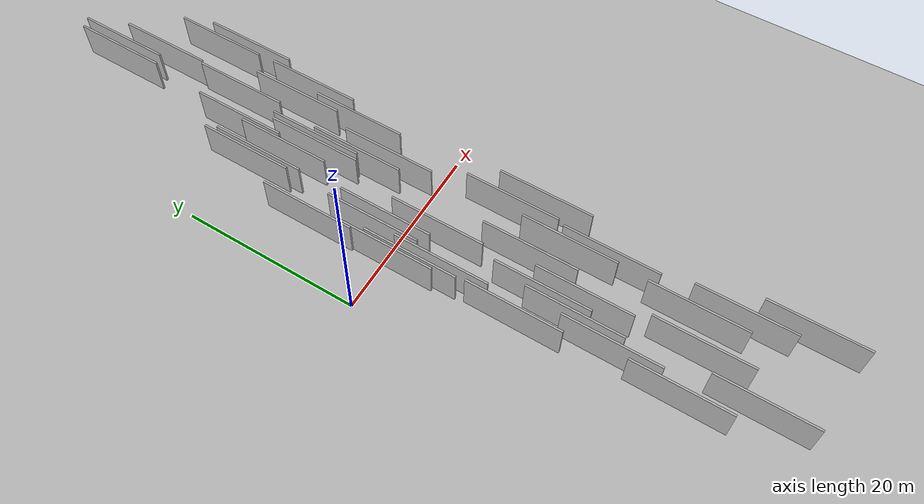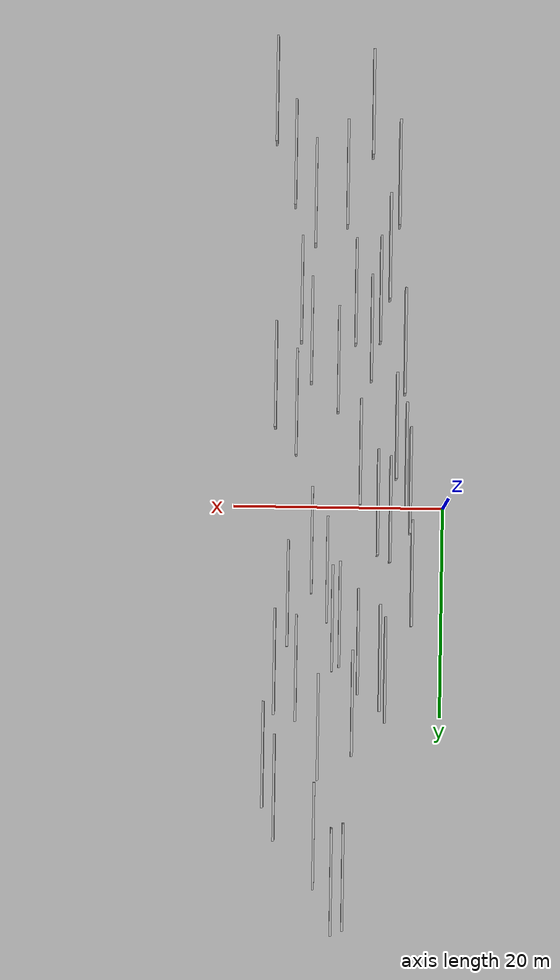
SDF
<?xml version="1.0" encoding="utf-8"?>

<sdf version="1.6">

   <world name="default">

      <gui fullscreen="0">

         <camera name="user_camera">

            <pose>-15 0 4.57585 0 0 0</pose>

            <view_controller>orbit</view_controller>

         </camera>

      </gui>

      <scene>

         <sky>

           <clouds>

             <speed>12</speed>

           </clouds>

         </sky>

         <ambient>0.4 0.4 0.4 1</ambient>

         <background>0.7 0.7 0.7 1</background>

         <shadows>1</shadows>

      </scene>

      <gravity>0 0 -9.8066</gravity>

      <magnetic_field>6e-06 2.3e-05 -4.2e-05</magnetic_field>

      <physics default="0" name="default_physics" type="ode">

         <ode>

            <solver>

               <type>quick</type>

               <iters>10</iters>

               <sor>1.0</sor>

               <use_dynamic_moi_rescaling>0</use_dynamic_moi_rescaling>

            </solver>

            <constraints>

               <cfm>0</cfm>

               <erp>0.2</erp>

               <contact_max_correcting_vel>100</contact_max_correcting_vel>

               <contact_surface_layer>0.001</contact_surface_layer>

            </constraints>

         </ode>

         <max_step_size>0.004</max_step_size>

         <real_time_factor>1</real_time_factor>

         <real_time_update_rate>250</real_time_update_rate>

      </physics>

      <light name="sun" type="directional">

         <cast_shadows>1</cast_shadows>

         <pose>0 0 10 0 0 0</pose>

         <diffuse>0.8 0.8 0.8 1</diffuse>

         <specular>0.2 0.2 0.2 1</specular>

         <attenuation>

            <range>1000</range>

            <constant>0.9</constant>

            <linear>0.01</linear>

            <quadratic>0.001</quadratic>

         </attenuation>

         <direction>-0.5 0.1 -0.9</direction>

      </light>

      <include>

         <name>ground_plane_1</name>

         <uri>model://HANNAS_ground_plane</uri>

         <pose>0 0 0  0 0 0</pose>

      </include>

      <include>

         <name>ground_plane_2</name>

         <uri>model://HANNAS_ground_plane</uri>

         <pose>100 0 0  0 0 0</pose>

      </include>

      <model name="HANNAS_wall_1">

         <static>1</static>

         <pose frame="">16.8194 23.5999 5.0 0.000000 0.000000 1.570796</pose>

         <link name="link">

            <pose frame="">0 0 2.00 0 0 0</pose>

            <collision name="collision">

               <geometry>

                  <box>

                     <size>10.00 0.2 4.00</size>

                  </box>

               </geometry>

               <max_contacts>10</max_contacts>

               <surface>

                  <contact>

                     <ode/>

                  </contact>

                  <bounce/>

                  <friction>

                     <torsional>

                        <ode/>

                     </torsional>

                     <ode/>

                  </friction>

               </surface>

            </collision>

            <visual name="visual">

               <cast_shadows>0</cast_shadows>

               <geometry>

                  <box>

                     <size>10.00 0.2 4.00</size>

                  </box>

               </geometry>

               <material>

                  <script>

                     <uri>model://HANNAS_wall/materials/scripts</uri>

                     <uri>model://HANNAS_wall/materials/textures</uri>

                     <name>vrc/HANNAS_wall</name>

                  </script>

               </material>

            </visual>

            <self_collide>0</self_collide>

            <enable_wind>0</enable_wind>

            <kinematic>0</kinematic>

         </link>

      </model>

      <model name="HANNAS_wall_2">

         <static>1</static>

         <pose frame="">16.0667 -12.1302 5.0 0.000000 0.000000 1.570796</pose>

         <link name="link">

            <pose frame="">0 0 2.00 0 0 0</pose>

            <collision name="collision">

               <geometry>

                  <box>

                     <size>10.00 0.2 4.00</size>

                  </box>

               </geometry>

               <max_contacts>10</max_contacts>

               <surface>

                  <contact>

                     <ode/>

                  </contact>

                  <bounce/>

                  <friction>

                     <torsional>

                        <ode/>

                     </torsional>

                     <ode/>

                  </friction>

               </surface>

            </collision>

            <visual name="visual">

               <cast_shadows>0</cast_shadows>

               <geometry>

                  <box>

                     <size>10.00 0.2 4.00</size>

                  </box>

               </geometry>

               <material>

                  <script>

                     <uri>model://HANNAS_wall/materials/scripts</uri>

                     <uri>model://HANNAS_wall/materials/textures</uri>

                     <name>vrc/HANNAS_wall</name>

                  </script>

               </material>

            </visual>

            <self_collide>0</self_collide>

            <enable_wind>0</enable_wind>

            <kinematic>0</kinematic>

         </link>

      </model>

      <model name="HANNAS_wall_3">

         <static>1</static>

         <pose frame="">5.9279 14.4292 5.0 0.000000 0.000000 1.570796</pose>

         <link name="link">

            <pose frame="">0 0 2.00 0 0 0</pose>

            <collision name="collision">

               <geometry>

                  <box>

                     <size>10.00 0.2 4.00</size>

                  </box>

               </geometry>

               <max_contacts>10</max_contacts>

               <surface>

                  <contact>

                     <ode/>

                  </contact>

                  <bounce/>

                  <friction>

                     <torsional>

                        <ode/>

                     </torsional>

                     <ode/>

                  </friction>

               </surface>

            </collision>

            <visual name="visual">

               <cast_shadows>0</cast_shadows>

               <geometry>

                  <box>

                     <size>10.00 0.2 4.00</size>

                  </box>

               </geometry>

               <material>

                  <script>

                     <uri>model://HANNAS_wall/materials/scripts</uri>

                     <uri>model://HANNAS_wall/materials/textures</uri>

                     <name>vrc/HANNAS_wall</name>

                  </script>

               </material>

            </visual>

            <self_collide>0</self_collide>

            <enable_wind>0</enable_wind>

            <kinematic>0</kinematic>

         </link>

      </model>

      <model name="HANNAS_wall_4">

         <static>1</static>

         <pose frame="">7.9759 -4.9301 5.0 0.000000 0.000000 1.570796</pose>

         <link name="link">

            <pose frame="">0 0 2.00 0 0 0</pose>

            <collision name="collision">

               <geometry>

                  <box>

                     <size>10.00 0.2 4.00</size>

                  </box>

               </geometry>

               <max_contacts>10</max_contacts>

               <surface>

                  <contact>

                     <ode/>

                  </contact>

                  <bounce/>

                  <friction>

                     <torsional>

                        <ode/>

                     </torsional>

                     <ode/>

                  </friction>

               </surface>

            </collision>

            <visual name="visual">

               <cast_shadows>0</cast_shadows>

               <geometry>

                  <box>

                     <size>10.00 0.2 4.00</size>

                  </box>

               </geometry>

               <material>

                  <script>

                     <uri>model://HANNAS_wall/materials/scripts</uri>

                     <uri>model://HANNAS_wall/materials/textures</uri>

                     <name>vrc/HANNAS_wall</name>

                  </script>

               </material>

            </visual>

            <self_collide>0</self_collide>

            <enable_wind>0</enable_wind>

            <kinematic>0</kinematic>

         </link>

      </model>

      <model name="HANNAS_wall_5">

         <static>1</static>

         <pose frame="">15.7229 26.6872 5.0 0.000000 0.000000 1.570796</pose>

         <link name="link">

            <pose frame="">0 0 2.00 0 0 0</pose>

            <collision name="collision">

               <geometry>

                  <box>

                     <size>10.00 0.2 4.00</size>

                  </box>

               </geometry>

               <max_contacts>10</max_contacts>

               <surface>

                  <contact>

                     <ode/>

                  </contact>

                  <bounce/>

                  <friction>

                     <torsional>

                        <ode/>

                     </torsional>

                     <ode/>

                  </friction>

               </surface>

            </collision>

            <visual name="visual">

               <cast_shadows>0</cast_shadows>

               <geometry>

                  <box>

                     <size>10.00 0.2 4.00</size>

                  </box>

               </geometry>

               <material>

                  <script>

                     <uri>model://HANNAS_wall/materials/scripts</uri>

                     <uri>model://HANNAS_wall/materials/textures</uri>

                     <name>vrc/HANNAS_wall</name>

                  </script>

               </material>

            </visual>

            <self_collide>0</self_collide>

            <enable_wind>0</enable_wind>

            <kinematic>0</kinematic>

         </link>

      </model>

      <model name="HANNAS_wall_6">

         <static>1</static>

         <pose frame="">8.4794 18.7183 5.0 0.000000 0.000000 1.570796</pose>

         <link name="link">

            <pose frame="">0 0 2.00 0 0 0</pose>

            <collision name="collision">

               <geometry>

                  <box>

                     <size>10.00 0.2 4.00</size>

                  </box>

               </geometry>

               <max_contacts>10</max_contacts>

               <surface>

                  <contact>

                     <ode/>

                  </contact>

                  <bounce/>

                  <friction>

                     <torsional>

                        <ode/>

                     </torsional>

                     <ode/>

                  </friction>

               </surface>

            </collision>

            <visual name="visual">

               <cast_shadows>0</cast_shadows>

               <geometry>

                  <box>

                     <size>10.00 0.2 4.00</size>

                  </box>

               </geometry>

               <material>

                  <script>

                     <uri>model://HANNAS_wall/materials/scripts</uri>

                     <uri>model://HANNAS_wall/materials/textures</uri>

                     <name>vrc/HANNAS_wall</name>

                  </script>

               </material>

            </visual>

            <self_collide>0</self_collide>

            <enable_wind>0</enable_wind>

            <kinematic>0</kinematic>

         </link>

      </model>

      <model name="HANNAS_wall_7">

         <static>1</static>

         <pose frame="">7.0692 -16.6291 5.0 0.000000 0.000000 1.570796</pose>

         <link name="link">

            <pose frame="">0 0 2.00 0 0 0</pose>

            <collision name="collision">

               <geometry>

                  <box>

                     <size>10.00 0.2 4.00</size>

                  </box>

               </geometry>

               <max_contacts>10</max_contacts>

               <surface>

                  <contact>

                     <ode/>

                  </contact>

                  <bounce/>

                  <friction>

                     <torsional>

                        <ode/>

                     </torsional>

                     <ode/>

                  </friction>

               </surface>

            </collision>

            <visual name="visual">

               <cast_shadows>0</cast_shadows>

               <geometry>

                  <box>

                     <size>10.00 0.2 4.00</size>

                  </box>

               </geometry>

               <material>

                  <script>

                     <uri>model://HANNAS_wall/materials/scripts</uri>

                     <uri>model://HANNAS_wall/materials/textures</uri>

                     <name>vrc/HANNAS_wall</name>

                  </script>

               </material>

            </visual>

            <self_collide>0</self_collide>

            <enable_wind>0</enable_wind>

            <kinematic>0</kinematic>

         </link>

      </model>

      <model name="HANNAS_wall_8">

         <static>1</static>

         <pose frame="">7.1551 -38.0126 5.0 0.000000 0.000000 1.570796</pose>

         <link name="link">

            <pose frame="">0 0 2.00 0 0 0</pose>

            <collision name="collision">

               <geometry>

                  <box>

                     <size>10.00 0.2 4.00</size>

                  </box>

               </geometry>

               <max_contacts>10</max_contacts>

               <surface>

                  <contact>

                     <ode/>

                  </contact>

                  <bounce/>

                  <friction>

                     <torsional>

                        <ode/>

                     </torsional>

                     <ode/>

                  </friction>

               </surface>

            </collision>

            <visual name="visual">

               <cast_shadows>0</cast_shadows>

               <geometry>

                  <box>

                     <size>10.00 0.2 4.00</size>

                  </box>

               </geometry>

               <material>

                  <script>

                     <uri>model://HANNAS_wall/materials/scripts</uri>

                     <uri>model://HANNAS_wall/materials/textures</uri>

                     <name>vrc/HANNAS_wall</name>

                  </script>

               </material>

            </visual>

            <self_collide>0</self_collide>

            <enable_wind>0</enable_wind>

            <kinematic>0</kinematic>

         </link>

      </model>

      <model name="HANNAS_wall_9">

         <static>1</static>

         <pose frame="">15.8498 14.8824 5.0 0.000000 0.000000 1.570796</pose>

         <link name="link">

            <pose frame="">0 0 2.00 0 0 0</pose>

            <collision name="collision">

               <geometry>

                  <box>

                     <size>10.00 0.2 4.00</size>

                  </box>

               </geometry>

               <max_contacts>10</max_contacts>

               <surface>

                  <contact>

                     <ode/>

                  </contact>

                  <bounce/>

                  <friction>

                     <torsional>

                        <ode/>

                     </torsional>

                     <ode/>

                  </friction>

               </surface>

            </collision>

            <visual name="visual">

               <cast_shadows>0</cast_shadows>

               <geometry>

                  <box>

                     <size>10.00 0.2 4.00</size>

                  </box>

               </geometry>

               <material>

                  <script>

                     <uri>model://HANNAS_wall/materials/scripts</uri>

                     <uri>model://HANNAS_wall/materials/textures</uri>

                     <name>vrc/HANNAS_wall</name>

                  </script>

               </material>

            </visual>

            <self_collide>0</self_collide>

            <enable_wind>0</enable_wind>

            <kinematic>0</kinematic>

         </link>

      </model>

      <model name="HANNAS_wall_10">

         <static>1</static>

         <pose frame="">6.2799 -0.2118 5.0 0.000000 0.000000 1.570796</pose>

         <link name="link">

            <pose frame="">0 0 2.00 0 0 0</pose>

            <collision name="collision">

               <geometry>

                  <box>

                     <size>10.00 0.2 4.00</size>

                  </box>

               </geometry>

               <max_contacts>10</max_contacts>

               <surface>

                  <contact>

                     <ode/>

                  </contact>

                  <bounce/>

                  <friction>

                     <torsional>

                        <ode/>

                     </torsional>

                     <ode/>

                  </friction>

               </surface>

            </collision>

            <visual name="visual">

               <cast_shadows>0</cast_shadows>

               <geometry>

                  <box>

                     <size>10.00 0.2 4.00</size>

                  </box>

               </geometry>

               <material>

                  <script>

                     <uri>model://HANNAS_wall/materials/scripts</uri>

                     <uri>model://HANNAS_wall/materials/textures</uri>

                     <name>vrc/HANNAS_wall</name>

                  </script>

               </material>

            </visual>

            <self_collide>0</self_collide>

            <enable_wind>0</enable_wind>

            <kinematic>0</kinematic>

         </link>

      </model>

      <model name="HANNAS_wall_11">

         <static>1</static>

         <pose frame="">14.0681 -9.5814 5.0 0.000000 0.000000 1.570796</pose>

         <link name="link">

            <pose frame="">0 0 2.00 0 0 0</pose>

            <collision name="collision">

               <geometry>

                  <box>

                     <size>10.00 0.2 4.00</size>

                  </box>

               </geometry>

               <max_contacts>10</max_contacts>

               <surface>

                  <contact>

                     <ode/>

                  </contact>

                  <bounce/>

                  <friction>

                     <torsional>

                        <ode/>

                     </torsional>

                     <ode/>

                  </friction>

               </surface>

            </collision>

            <visual name="visual">

               <cast_shadows>0</cast_shadows>

               <geometry>

                  <box>

                     <size>10.00 0.2 4.00</size>

                  </box>

               </geometry>

               <material>

                  <script>

                     <uri>model://HANNAS_wall/materials/scripts</uri>

                     <uri>model://HANNAS_wall/materials/textures</uri>

                     <name>vrc/HANNAS_wall</name>

                  </script>

               </material>

            </visual>

            <self_collide>0</self_collide>

            <enable_wind>0</enable_wind>

            <kinematic>0</kinematic>

         </link>

      </model>

      <model name="HANNAS_wall_12">

         <static>1</static>

         <pose frame="">13.8197 15.4626 5.0 0.000000 0.000000 1.570796</pose>

         <link name="link">

            <pose frame="">0 0 2.00 0 0 0</pose>

            <collision name="collision">

               <geometry>

                  <box>

                     <size>10.00 0.2 4.00</size>

                  </box>

               </geometry>

               <max_contacts>10</max_contacts>

               <surface>

                  <contact>

                     <ode/>

                  </contact>

                  <bounce/>

                  <friction>

                     <torsional>

                        <ode/>

                     </torsional>

                     <ode/>

                  </friction>

               </surface>

            </collision>

            <visual name="visual">

               <cast_shadows>0</cast_shadows>

               <geometry>

                  <box>

                     <size>10.00 0.2 4.00</size>

                  </box>

               </geometry>

               <material>

                  <script>

                     <uri>model://HANNAS_wall/materials/scripts</uri>

                     <uri>model://HANNAS_wall/materials/textures</uri>

                     <name>vrc/HANNAS_wall</name>

                  </script>

               </material>

            </visual>

            <self_collide>0</self_collide>

            <enable_wind>0</enable_wind>

            <kinematic>0</kinematic>

         </link>

      </model>

      <model name="HANNAS_wall_13">

         <static>1</static>

         <pose frame="">11.6754 20.9842 5.0 0.000000 0.000000 1.570796</pose>

         <link name="link">

            <pose frame="">0 0 2.00 0 0 0</pose>

            <collision name="collision">

               <geometry>

                  <box>

                     <size>10.00 0.2 4.00</size>

                  </box>

               </geometry>

               <max_contacts>10</max_contacts>

               <surface>

                  <contact>

                     <ode/>

                  </contact>

                  <bounce/>

                  <friction>

                     <torsional>

                        <ode/>

                     </torsional>

                     <ode/>

                  </friction>

               </surface>

            </collision>

            <visual name="visual">

               <cast_shadows>0</cast_shadows>

               <geometry>

                  <box>

                     <size>10.00 0.2 4.00</size>

                  </box>

               </geometry>

               <material>

                  <script>

                     <uri>model://HANNAS_wall/materials/scripts</uri>

                     <uri>model://HANNAS_wall/materials/textures</uri>

                     <name>vrc/HANNAS_wall</name>

                  </script>

               </material>

            </visual>

            <self_collide>0</self_collide>

            <enable_wind>0</enable_wind>

            <kinematic>0</kinematic>

         </link>

      </model>

      <model name="HANNAS_wall_14">

         <static>1</static>

         <pose frame="">10.1607 -13.6476 5.0 0.000000 0.000000 1.570796</pose>

         <link name="link">

            <pose frame="">0 0 2.00 0 0 0</pose>

            <collision name="collision">

               <geometry>

                  <box>

                     <size>10.00 0.2 4.00</size>

                  </box>

               </geometry>

               <max_contacts>10</max_contacts>

               <surface>

                  <contact>

                     <ode/>

                  </contact>

                  <bounce/>

                  <friction>

                     <torsional>

                        <ode/>

                     </torsional>

                     <ode/>

                  </friction>

               </surface>

            </collision>

            <visual name="visual">

               <cast_shadows>0</cast_shadows>

               <geometry>

                  <box>

                     <size>10.00 0.2 4.00</size>

                  </box>

               </geometry>

               <material>

                  <script>

                     <uri>model://HANNAS_wall/materials/scripts</uri>

                     <uri>model://HANNAS_wall/materials/textures</uri>

                     <name>vrc/HANNAS_wall</name>

                  </script>

               </material>

            </visual>

            <self_collide>0</self_collide>

            <enable_wind>0</enable_wind>

            <kinematic>0</kinematic>

         </link>

      </model>

      <model name="HANNAS_wall_15">

         <static>1</static>

         <pose frame="">3.0188 6.4515 5.0 0.000000 0.000000 1.570796</pose>

         <link name="link">

            <pose frame="">0 0 2.00 0 0 0</pose>

            <collision name="collision">

               <geometry>

                  <box>

                     <size>10.00 0.2 4.00</size>

                  </box>

               </geometry>

               <max_contacts>10</max_contacts>

               <surface>

                  <contact>

                     <ode/>

                  </contact>

                  <bounce/>

                  <friction>

                     <torsional>

                        <ode/>

                     </torsional>

                     <ode/>

                  </friction>

               </surface>

            </collision>

            <visual name="visual">

               <cast_shadows>0</cast_shadows>

               <geometry>

                  <box>

                     <size>10.00 0.2 4.00</size>

                  </box>

               </geometry>

               <material>

                  <script>

                     <uri>model://HANNAS_wall/materials/scripts</uri>

                     <uri>model://HANNAS_wall/materials/textures</uri>

                     <name>vrc/HANNAS_wall</name>

                  </script>

               </material>

            </visual>

            <self_collide>0</self_collide>

            <enable_wind>0</enable_wind>

            <kinematic>0</kinematic>

         </link>

      </model>

      <model name="HANNAS_wall_16">

         <static>1</static>

         <pose frame="">5.4057 -24.4074 5.0 0.000000 0.000000 1.570796</pose>

         <link name="link">

            <pose frame="">0 0 2.00 0 0 0</pose>

            <collision name="collision">

               <geometry>

                  <box>

                     <size>10.00 0.2 4.00</size>

                  </box>

               </geometry>

               <max_contacts>10</max_contacts>

               <surface>

                  <contact>

                     <ode/>

                  </contact>

                  <bounce/>

                  <friction>

                     <torsional>

                        <ode/>

                     </torsional>

                     <ode/>

                  </friction>

               </surface>

            </collision>

            <visual name="visual">

               <cast_shadows>0</cast_shadows>

               <geometry>

                  <box>

                     <size>10.00 0.2 4.00</size>

                  </box>

               </geometry>

               <material>

                  <script>

                     <uri>model://HANNAS_wall/materials/scripts</uri>

                     <uri>model://HANNAS_wall/materials/textures</uri>

                     <name>vrc/HANNAS_wall</name>

                  </script>

               </material>

            </visual>

            <self_collide>0</self_collide>

            <enable_wind>0</enable_wind>

            <kinematic>0</kinematic>

         </link>

      </model>

      <model name="HANNAS_wall_17">

         <static>1</static>

         <pose frame="">5.1045 0.4336 5.0 0.000000 0.000000 1.570796</pose>

         <link name="link">

            <pose frame="">0 0 2.00 0 0 0</pose>

            <collision name="collision">

               <geometry>

                  <box>

                     <size>10.00 0.2 4.00</size>

                  </box>

               </geometry>

               <max_contacts>10</max_contacts>

               <surface>

                  <contact>

                     <ode/>

                  </contact>

                  <bounce/>

                  <friction>

                     <torsional>

                        <ode/>

                     </torsional>

                     <ode/>

                  </friction>

               </surface>

            </collision>

            <visual name="visual">

               <cast_shadows>0</cast_shadows>

               <geometry>

                  <box>

                     <size>10.00 0.2 4.00</size>

                  </box>

               </geometry>

               <material>

                  <script>

                     <uri>model://HANNAS_wall/materials/scripts</uri>

                     <uri>model://HANNAS_wall/materials/textures</uri>

                     <name>vrc/HANNAS_wall</name>

                  </script>

               </material>

            </visual>

            <self_collide>0</self_collide>

            <enable_wind>0</enable_wind>

            <kinematic>0</kinematic>

         </link>

      </model>

      <model name="HANNAS_wall_18">

         <static>1</static>

         <pose frame="">3.2434 -2.3034 5.0 0.000000 0.000000 1.570796</pose>

         <link name="link">

            <pose frame="">0 0 2.00 0 0 0</pose>

            <collision name="collision">

               <geometry>

                  <box>

                     <size>10.00 0.2 4.00</size>

                  </box>

               </geometry>

               <max_contacts>10</max_contacts>

               <surface>

                  <contact>

                     <ode/>

                  </contact>

                  <bounce/>

                  <friction>

                     <torsional>

                        <ode/>

                     </torsional>

                     <ode/>

                  </friction>

               </surface>

            </collision>

            <visual name="visual">

               <cast_shadows>0</cast_shadows>

               <geometry>

                  <box>

                     <size>10.00 0.2 4.00</size>

                  </box>

               </geometry>

               <material>

                  <script>

                     <uri>model://HANNAS_wall/materials/scripts</uri>

                     <uri>model://HANNAS_wall/materials/textures</uri>

                     <name>vrc/HANNAS_wall</name>

                  </script>

               </material>

            </visual>

            <self_collide>0</self_collide>

            <enable_wind>0</enable_wind>

            <kinematic>0</kinematic>

         </link>

      </model>

      <model name="HANNAS_wall_19">

         <static>1</static>

         <pose frame="">3.6451 -4.6188 5.0 0.000000 0.000000 1.570796</pose>

         <link name="link">

            <pose frame="">0 0 2.00 0 0 0</pose>

            <collision name="collision">

               <geometry>

                  <box>

                     <size>10.00 0.2 4.00</size>

                  </box>

               </geometry>

               <max_contacts>10</max_contacts>

               <surface>

                  <contact>

                     <ode/>

                  </contact>

                  <bounce/>

                  <friction>

                     <torsional>

                        <ode/>

                     </torsional>

                     <ode/>

                  </friction>

               </surface>

            </collision>

            <visual name="visual">

               <cast_shadows>0</cast_shadows>

               <geometry>

                  <box>

                     <size>10.00 0.2 4.00</size>

                  </box>

               </geometry>

               <material>

                  <script>

                     <uri>model://HANNAS_wall/materials/scripts</uri>

                     <uri>model://HANNAS_wall/materials/textures</uri>

                     <name>vrc/HANNAS_wall</name>

                  </script>

               </material>

            </visual>

            <self_collide>0</self_collide>

            <enable_wind>0</enable_wind>

            <kinematic>0</kinematic>

         </link>

      </model>

      <model name="HANNAS_wall_20">

         <static>1</static>

         <pose frame="">14.4565 -33.1726 5.0 0.000000 0.000000 1.570796</pose>

         <link name="link">

            <pose frame="">0 0 2.00 0 0 0</pose>

            <collision name="collision">

               <geometry>

                  <box>

                     <size>10.00 0.2 4.00</size>

                  </box>

               </geometry>

               <max_contacts>10</max_contacts>

               <surface>

                  <contact>

                     <ode/>

                  </contact>

                  <bounce/>

                  <friction>

                     <torsional>

                        <ode/>

                     </torsional>

                     <ode/>

                  </friction>

               </surface>

            </collision>

            <visual name="visual">

               <cast_shadows>0</cast_shadows>

               <geometry>

                  <box>

                     <size>10.00 0.2 4.00</size>

                  </box>

               </geometry>

               <material>

                  <script>

                     <uri>model://HANNAS_wall/materials/scripts</uri>

                     <uri>model://HANNAS_wall/materials/textures</uri>

                     <name>vrc/HANNAS_wall</name>

                  </script>

               </material>

            </visual>

            <self_collide>0</self_collide>

            <enable_wind>0</enable_wind>

            <kinematic>0</kinematic>

         </link>

      </model>

      <model name="HANNAS_wall_21">

         <static>1</static>

         <pose frame="">6.2597 -20.3163 5.0 0.000000 0.000000 1.570796</pose>

         <link name="link">

            <pose frame="">0 0 2.00 0 0 0</pose>

            <collision name="collision">

               <geometry>

                  <box>

                     <size>10.00 0.2 4.00</size>

                  </box>

               </geometry>

               <max_contacts>10</max_contacts>

               <surface>

                  <contact>

                     <ode/>

                  </contact>

                  <bounce/>

                  <friction>

                     <torsional>

                        <ode/>

                     </torsional>

                     <ode/>

                  </friction>

               </surface>

            </collision>

            <visual name="visual">

               <cast_shadows>0</cast_shadows>

               <geometry>

                  <box>

                     <size>10.00 0.2 4.00</size>

                  </box>

               </geometry>

               <material>

                  <script>

                     <uri>model://HANNAS_wall/materials/scripts</uri>

                     <uri>model://HANNAS_wall/materials/textures</uri>

                     <name>vrc/HANNAS_wall</name>

                  </script>

               </material>

            </visual>

            <self_collide>0</self_collide>

            <enable_wind>0</enable_wind>

            <kinematic>0</kinematic>

         </link>

      </model>

      <model name="HANNAS_wall_22">

         <static>1</static>

         <pose frame="">4.5994 -7.4228 5.0 0.000000 0.000000 1.570796</pose>

         <link name="link">

            <pose frame="">0 0 2.00 0 0 0</pose>

            <collision name="collision">

               <geometry>

                  <box>

                     <size>10.00 0.2 4.00</size>

                  </box>

               </geometry>

               <max_contacts>10</max_contacts>

               <surface>

                  <contact>

                     <ode/>

                  </contact>

                  <bounce/>

                  <friction>

                     <torsional>

                        <ode/>

                     </torsional>

                     <ode/>

                  </friction>

               </surface>

            </collision>

            <visual name="visual">

               <cast_shadows>0</cast_shadows>

               <geometry>

                  <box>

                     <size>10.00 0.2 4.00</size>

                  </box>

               </geometry>

               <material>

                  <script>

                     <uri>model://HANNAS_wall/materials/scripts</uri>

                     <uri>model://HANNAS_wall/materials/textures</uri>

                     <name>vrc/HANNAS_wall</name>

                  </script>

               </material>

            </visual>

            <self_collide>0</self_collide>

            <enable_wind>0</enable_wind>

            <kinematic>0</kinematic>

         </link>

      </model>

      <model name="HANNAS_wall_23">

         <static>1</static>

         <pose frame="">12.4630 3.4419 5.0 0.000000 0.000000 1.570796</pose>

         <link name="link">

            <pose frame="">0 0 2.00 0 0 0</pose>

            <collision name="collision">

               <geometry>

                  <box>

                     <size>10.00 0.2 4.00</size>

                  </box>

               </geometry>

               <max_contacts>10</max_contacts>

               <surface>

                  <contact>

                     <ode/>

                  </contact>

                  <bounce/>

                  <friction>

                     <torsional>

                        <ode/>

                     </torsional>

                     <ode/>

                  </friction>

               </surface>

            </collision>

            <visual name="visual">

               <cast_shadows>0</cast_shadows>

               <geometry>

                  <box>

                     <size>10.00 0.2 4.00</size>

                  </box>

               </geometry>

               <material>

                  <script>

                     <uri>model://HANNAS_wall/materials/scripts</uri>

                     <uri>model://HANNAS_wall/materials/textures</uri>

                     <name>vrc/HANNAS_wall</name>

                  </script>

               </material>

            </visual>

            <self_collide>0</self_collide>

            <enable_wind>0</enable_wind>

            <kinematic>0</kinematic>

         </link>

      </model>

      <model name="HANNAS_wall_24">

         <static>1</static>

         <pose frame="">7.9998 12.9274 5.0 0.000000 0.000000 1.570796</pose>

         <link name="link">

            <pose frame="">0 0 2.00 0 0 0</pose>

            <collision name="collision">

               <geometry>

                  <box>

                     <size>10.00 0.2 4.00</size>

                  </box>

               </geometry>

               <max_contacts>10</max_contacts>

               <surface>

                  <contact>

                     <ode/>

                  </contact>

                  <bounce/>

                  <friction>

                     <torsional>

                        <ode/>

                     </torsional>

                     <ode/>

                  </friction>

               </surface>

            </collision>

            <visual name="visual">

               <cast_shadows>0</cast_shadows>

               <geometry>

                  <box>

                     <size>10.00 0.2 4.00</size>

                  </box>

               </geometry>

               <material>

                  <script>

                     <uri>model://HANNAS_wall/materials/scripts</uri>

                     <uri>model://HANNAS_wall/materials/textures</uri>

                     <name>vrc/HANNAS_wall</name>

                  </script>

               </material>

            </visual>

            <self_collide>0</self_collide>

            <enable_wind>0</enable_wind>

            <kinematic>0</kinematic>

         </link>

      </model>

      <model name="HANNAS_wall_25">

         <static>1</static>

         <pose frame="">12.5018 -29.4752 5.0 0.000000 0.000000 1.570796</pose>

         <link name="link">

            <pose frame="">0 0 2.00 0 0 0</pose>

            <collision name="collision">

               <geometry>

                  <box>

                     <size>10.00 0.2 4.00</size>

                  </box>

               </geometry>

               <max_contacts>10</max_contacts>

               <surface>

                  <contact>

                     <ode/>

                  </contact>

                  <bounce/>

                  <friction>

                     <torsional>

                        <ode/>

                     </torsional>

                     <ode/>

                  </friction>

               </surface>

            </collision>

            <visual name="visual">

               <cast_shadows>0</cast_shadows>

               <geometry>

                  <box>

                     <size>10.00 0.2 4.00</size>

                  </box>

               </geometry>

               <material>

                  <script>

                     <uri>model://HANNAS_wall/materials/scripts</uri>

                     <uri>model://HANNAS_wall/materials/textures</uri>

                     <name>vrc/HANNAS_wall</name>

                  </script>

               </material>

            </visual>

            <self_collide>0</self_collide>

            <enable_wind>0</enable_wind>

            <kinematic>0</kinematic>

         </link>

      </model>

      <model name="HANNAS_wall_26">

         <static>1</static>

         <pose frame="">9.1547 34.9756 5.0 0.000000 0.000000 1.570796</pose>

         <link name="link">

            <pose frame="">0 0 2.00 0 0 0</pose>

            <collision name="collision">

               <geometry>

                  <box>

                     <size>10.00 0.2 4.00</size>

                  </box>

               </geometry>

               <max_contacts>10</max_contacts>

               <surface>

                  <contact>

                     <ode/>

                  </contact>

                  <bounce/>

                  <friction>

                     <torsional>

                        <ode/>

                     </torsional>

                     <ode/>

                  </friction>

               </surface>

            </collision>

            <visual name="visual">

               <cast_shadows>0</cast_shadows>

               <geometry>

                  <box>

                     <size>10.00 0.2 4.00</size>

                  </box>

               </geometry>

               <material>

                  <script>

                     <uri>model://HANNAS_wall/materials/scripts</uri>

                     <uri>model://HANNAS_wall/materials/textures</uri>

                     <name>vrc/HANNAS_wall</name>

                  </script>

               </material>

            </visual>

            <self_collide>0</self_collide>

            <enable_wind>0</enable_wind>

            <kinematic>0</kinematic>

         </link>

      </model>

      <model name="HANNAS_wall_27">

         <static>1</static>

         <pose frame="">10.9831 6.2111 5.0 0.000000 0.000000 1.570796</pose>

         <link name="link">

            <pose frame="">0 0 2.00 0 0 0</pose>

            <collision name="collision">

               <geometry>

                  <box>

                     <size>10.00 0.2 4.00</size>

                  </box>

               </geometry>

               <max_contacts>10</max_contacts>

               <surface>

                  <contact>

                     <ode/>

                  </contact>

                  <bounce/>

                  <friction>

                     <torsional>

                        <ode/>

                     </torsional>

                     <ode/>

                  </friction>

               </surface>

            </collision>

            <visual name="visual">

               <cast_shadows>0</cast_shadows>

               <geometry>

                  <box>

                     <size>10.00 0.2 4.00</size>

                  </box>

               </geometry>

               <material>

                  <script>

                     <uri>model://HANNAS_wall/materials/scripts</uri>

                     <uri>model://HANNAS_wall/materials/textures</uri>

                     <name>vrc/HANNAS_wall</name>

                  </script>

               </material>

            </visual>

            <self_collide>0</self_collide>

            <enable_wind>0</enable_wind>

            <kinematic>0</kinematic>

         </link>

      </model>

      <model name="HANNAS_wall_28">

         <static>1</static>

         <pose frame="">13.7044 -20.2439 5.0 0.000000 0.000000 1.570796</pose>

         <link name="link">

            <pose frame="">0 0 2.00 0 0 0</pose>

            <collision name="collision">

               <geometry>

                  <box>

                     <size>10.00 0.2 4.00</size>

                  </box>

               </geometry>

               <max_contacts>10</max_contacts>

               <surface>

                  <contact>

                     <ode/>

                  </contact>

                  <bounce/>

                  <friction>

                     <torsional>

                        <ode/>

                     </torsional>

                     <ode/>

                  </friction>

               </surface>

            </collision>

            <visual name="visual">

               <cast_shadows>0</cast_shadows>

               <geometry>

                  <box>

                     <size>10.00 0.2 4.00</size>

                  </box>

               </geometry>

               <material>

                  <script>

                     <uri>model://HANNAS_wall/materials/scripts</uri>

                     <uri>model://HANNAS_wall/materials/textures</uri>

                     <name>vrc/HANNAS_wall</name>

                  </script>

               </material>

            </visual>

            <self_collide>0</self_collide>

            <enable_wind>0</enable_wind>

            <kinematic>0</kinematic>

         </link>

      </model>

      <model name="HANNAS_wall_29">

         <static>1</static>

         <pose frame="">12.7140 -16.4110 5.0 0.000000 0.000000 1.570796</pose>

         <link name="link">

            <pose frame="">0 0 2.00 0 0 0</pose>

            <collision name="collision">

               <geometry>

                  <box>

                     <size>10.00 0.2 4.00</size>

                  </box>

               </geometry>

               <max_contacts>10</max_contacts>

               <surface>

                  <contact>

                     <ode/>

                  </contact>

                  <bounce/>

                  <friction>

                     <torsional>

                        <ode/>

                     </torsional>

                     <ode/>

                  </friction>

               </surface>

            </collision>

            <visual name="visual">

               <cast_shadows>0</cast_shadows>

               <geometry>

                  <box>

                     <size>10.00 0.2 4.00</size>

                  </box>

               </geometry>

               <material>

                  <script>

                     <uri>model://HANNAS_wall/materials/scripts</uri>

                     <uri>model://HANNAS_wall/materials/textures</uri>

                     <name>vrc/HANNAS_wall</name>

                  </script>

               </material>

            </visual>

            <self_collide>0</self_collide>

            <enable_wind>0</enable_wind>

            <kinematic>0</kinematic>

         </link>

      </model>

      <model name="HANNAS_wall_30">

         <static>1</static>

         <pose frame="">8.5845 -20.0893 5.0 0.000000 0.000000 1.570796</pose>

         <link name="link">

            <pose frame="">0 0 2.00 0 0 0</pose>

            <collision name="collision">

               <geometry>

                  <box>

                     <size>10.00 0.2 4.00</size>

                  </box>

               </geometry>

               <max_contacts>10</max_contacts>

               <surface>

                  <contact>

                     <ode/>

                  </contact>

                  <bounce/>

                  <friction>

                     <torsional>

                        <ode/>

                     </torsional>

                     <ode/>

                  </friction>

               </surface>

            </collision>

            <visual name="visual">

               <cast_shadows>0</cast_shadows>

               <geometry>

                  <box>

                     <size>10.00 0.2 4.00</size>

                  </box>

               </geometry>

               <material>

                  <script>

                     <uri>model://HANNAS_wall/materials/scripts</uri>

                     <uri>model://HANNAS_wall/materials/textures</uri>

                     <name>vrc/HANNAS_wall</name>

                  </script>

               </material>

            </visual>

            <self_collide>0</self_collide>

            <enable_wind>0</enable_wind>

            <kinematic>0</kinematic>

         </link>

      </model>

      <model name="HANNAS_wall_31">

         <static>1</static>

         <pose frame="">10.4450 10.7871 5.0 0.000000 0.000000 1.570796</pose>

         <link name="link">

            <pose frame="">0 0 2.00 0 0 0</pose>

            <collision name="collision">

               <geometry>

                  <box>

                     <size>10.00 0.2 4.00</size>

                  </box>

               </geometry>

               <max_contacts>10</max_contacts>

               <surface>

                  <contact>

                     <ode/>

                  </contact>

                  <bounce/>

                  <friction>

                     <torsional>

                        <ode/>

                     </torsional>

                     <ode/>

                  </friction>

               </surface>

            </collision>

            <visual name="visual">

               <cast_shadows>0</cast_shadows>

               <geometry>

                  <box>

                     <size>10.00 0.2 4.00</size>

                  </box>

               </geometry>

               <material>

                  <script>

                     <uri>model://HANNAS_wall/materials/scripts</uri>

                     <uri>model://HANNAS_wall/materials/textures</uri>

                     <name>vrc/HANNAS_wall</name>

                  </script>

               </material>

            </visual>

            <self_collide>0</self_collide>

            <enable_wind>0</enable_wind>

            <kinematic>0</kinematic>

         </link>

      </model>

      <model name="HANNAS_wall_32">

         <static>1</static>

         <pose frame="">5.4219 15.5507 5.0 0.000000 0.000000 1.570796</pose>

         <link name="link">

            <pose frame="">0 0 2.00 0 0 0</pose>

            <collision name="collision">

               <geometry>

                  <box>

                     <size>10.00 0.2 4.00</size>

                  </box>

               </geometry>

               <max_contacts>10</max_contacts>

               <surface>

                  <contact>

                     <ode/>

                  </contact>

                  <bounce/>

                  <friction>

                     <torsional>

                        <ode/>

                     </torsional>

                     <ode/>

                  </friction>

               </surface>

            </collision>

            <visual name="visual">

               <cast_shadows>0</cast_shadows>

               <geometry>

                  <box>

                     <size>10.00 0.2 4.00</size>

                  </box>

               </geometry>

               <material>

                  <script>

                     <uri>model://HANNAS_wall/materials/scripts</uri>

                     <uri>model://HANNAS_wall/materials/textures</uri>

                     <name>vrc/HANNAS_wall</name>

                  </script>

               </material>

            </visual>

            <self_collide>0</self_collide>

            <enable_wind>0</enable_wind>

            <kinematic>0</kinematic>

         </link>

      </model>

      <model name="HANNAS_wall_33">

         <static>1</static>

         <pose frame="">11.9430 31.1743 5.0 0.000000 0.000000 1.570796</pose>

         <link name="link">

            <pose frame="">0 0 2.00 0 0 0</pose>

            <collision name="collision">

               <geometry>

                  <box>

                     <size>10.00 0.2 4.00</size>

                  </box>

               </geometry>

               <max_contacts>10</max_contacts>

               <surface>

                  <contact>

                     <ode/>

                  </contact>

                  <bounce/>

                  <friction>

                     <torsional>

                        <ode/>

                     </torsional>

                     <ode/>

                  </friction>

               </surface>

            </collision>

            <visual name="visual">

               <cast_shadows>0</cast_shadows>

               <geometry>

                  <box>

                     <size>10.00 0.2 4.00</size>

                  </box>

               </geometry>

               <material>

                  <script>

                     <uri>model://HANNAS_wall/materials/scripts</uri>

                     <uri>model://HANNAS_wall/materials/textures</uri>

                     <name>vrc/HANNAS_wall</name>

                  </script>

               </material>

            </visual>

            <self_collide>0</self_collide>

            <enable_wind>0</enable_wind>

            <kinematic>0</kinematic>

         </link>

      </model>

      <model name="HANNAS_wall_34">

         <static>1</static>

         <pose frame="">9.7612 10.3854 5.0 0.000000 0.000000 1.570796</pose>

         <link name="link">

            <pose frame="">0 0 2.00 0 0 0</pose>

            <collision name="collision">

               <geometry>

                  <box>

                     <size>10.00 0.2 4.00</size>

                  </box>

               </geometry>

               <max_contacts>10</max_contacts>

               <surface>

                  <contact>

                     <ode/>

                  </contact>

                  <bounce/>

                  <friction>

                     <torsional>

                        <ode/>

                     </torsional>

                     <ode/>

                  </friction>

               </surface>

            </collision>

            <visual name="visual">

               <cast_shadows>0</cast_shadows>

               <geometry>

                  <box>

                     <size>10.00 0.2 4.00</size>

                  </box>

               </geometry>

               <material>

                  <script>

                     <uri>model://HANNAS_wall/materials/scripts</uri>

                     <uri>model://HANNAS_wall/materials/textures</uri>

                     <name>vrc/HANNAS_wall</name>

                  </script>

               </material>

            </visual>

            <self_collide>0</self_collide>

            <enable_wind>0</enable_wind>

            <kinematic>0</kinematic>

         </link>

      </model>

      <model name="HANNAS_wall_35">

         <static>1</static>

         <pose frame="">9.5102 -31.2662 5.0 0.000000 0.000000 1.570796</pose>

         <link name="link">

            <pose frame="">0 0 2.00 0 0 0</pose>

            <collision name="collision">

               <geometry>

                  <box>

                     <size>10.00 0.2 4.00</size>

                  </box>

               </geometry>

               <max_contacts>10</max_contacts>

               <surface>

                  <contact>

                     <ode/>

                  </contact>

                  <bounce/>

                  <friction>

                     <torsional>

                        <ode/>

                     </torsional>

                     <ode/>

                  </friction>

               </surface>

            </collision>

            <visual name="visual">

               <cast_shadows>0</cast_shadows>

               <geometry>

                  <box>

                     <size>10.00 0.2 4.00</size>

                  </box>

               </geometry>

               <material>

                  <script>

                     <uri>model://HANNAS_wall/materials/scripts</uri>

                     <uri>model://HANNAS_wall/materials/textures</uri>

                     <name>vrc/HANNAS_wall</name>

                  </script>

               </material>

            </visual>

            <self_collide>0</self_collide>

            <enable_wind>0</enable_wind>

            <kinematic>0</kinematic>

         </link>

      </model>

      <model name="HANNAS_wall_36">

         <static>1</static>

         <pose frame="">4.5836 -31.3686 5.0 0.000000 0.000000 1.570796</pose>

         <link name="link">

            <pose frame="">0 0 2.00 0 0 0</pose>

            <collision name="collision">

               <geometry>

                  <box>

                     <size>10.00 0.2 4.00</size>

                  </box>

               </geometry>

               <max_contacts>10</max_contacts>

               <surface>

                  <contact>

                     <ode/>

                  </contact>

                  <bounce/>

                  <friction>

                     <torsional>

                        <ode/>

                     </torsional>

                     <ode/>

                  </friction>

               </surface>

            </collision>

            <visual name="visual">

               <cast_shadows>0</cast_shadows>

               <geometry>

                  <box>

                     <size>10.00 0.2 4.00</size>

                  </box>

               </geometry>

               <material>

                  <script>

                     <uri>model://HANNAS_wall/materials/scripts</uri>

                     <uri>model://HANNAS_wall/materials/textures</uri>

                     <name>vrc/HANNAS_wall</name>

                  </script>

               </material>

            </visual>

            <self_collide>0</self_collide>

            <enable_wind>0</enable_wind>

            <kinematic>0</kinematic>

         </link>

      </model>

      <model name="HANNAS_wall_37">

         <static>1</static>

         <pose frame="">3.8803 -15.4449 5.0 0.000000 0.000000 1.570796</pose>

         <link name="link">

            <pose frame="">0 0 2.00 0 0 0</pose>

            <collision name="collision">

               <geometry>

                  <box>

                     <size>10.00 0.2 4.00</size>

                  </box>

               </geometry>

               <max_contacts>10</max_contacts>

               <surface>

                  <contact>

                     <ode/>

                  </contact>

                  <bounce/>

                  <friction>

                     <torsional>

                        <ode/>

                     </torsional>

                     <ode/>

                  </friction>

               </surface>

            </collision>

            <visual name="visual">

               <cast_shadows>0</cast_shadows>

               <geometry>

                  <box>

                     <size>10.00 0.2 4.00</size>

                  </box>

               </geometry>

               <material>

                  <script>

                     <uri>model://HANNAS_wall/materials/scripts</uri>

                     <uri>model://HANNAS_wall/materials/textures</uri>

                     <name>vrc/HANNAS_wall</name>

                  </script>

               </material>

            </visual>

            <self_collide>0</self_collide>

            <enable_wind>0</enable_wind>

            <kinematic>0</kinematic>

         </link>

      </model>

      <model name="HANNAS_wall_38">

         <static>1</static>

         <pose frame="">16.2967 -39.1708 5.0 0.000000 0.000000 1.570796</pose>

         <link name="link">

            <pose frame="">0 0 2.00 0 0 0</pose>

            <collision name="collision">

               <geometry>

                  <box>

                     <size>10.00 0.2 4.00</size>

                  </box>

               </geometry>

               <max_contacts>10</max_contacts>

               <surface>

                  <contact>

                     <ode/>

                  </contact>

                  <bounce/>

                  <friction>

                     <torsional>

                        <ode/>

                     </torsional>

                     <ode/>

                  </friction>

               </surface>

            </collision>

            <visual name="visual">

               <cast_shadows>0</cast_shadows>

               <geometry>

                  <box>

                     <size>10.00 0.2 4.00</size>

                  </box>

               </geometry>

               <material>

                  <script>

                     <uri>model://HANNAS_wall/materials/scripts</uri>

                     <uri>model://HANNAS_wall/materials/textures</uri>

                     <name>vrc/HANNAS_wall</name>

                  </script>

               </material>

            </visual>

            <self_collide>0</self_collide>

            <enable_wind>0</enable_wind>

            <kinematic>0</kinematic>

         </link>

      </model>

      <model name="HANNAS_wall_39">

         <static>1</static>

         <pose frame="">14.6735 8.4688 5.0 0.000000 0.000000 1.570796</pose>

         <link name="link">

            <pose frame="">0 0 2.00 0 0 0</pose>

            <collision name="collision">

               <geometry>

                  <box>

                     <size>10.00 0.2 4.00</size>

                  </box>

               </geometry>

               <max_contacts>10</max_contacts>

               <surface>

                  <contact>

                     <ode/>

                  </contact>

                  <bounce/>

                  <friction>

                     <torsional>

                        <ode/>

                     </torsional>

                     <ode/>

                  </friction>

               </surface>

            </collision>

            <visual name="visual">

               <cast_shadows>0</cast_shadows>

               <geometry>

                  <box>

                     <size>10.00 0.2 4.00</size>

                  </box>

               </geometry>

               <material>

                  <script>

                     <uri>model://HANNAS_wall/materials/scripts</uri>

                     <uri>model://HANNAS_wall/materials/textures</uri>

                     <name>vrc/HANNAS_wall</name>

                  </script>

               </material>

            </visual>

            <self_collide>0</self_collide>

            <enable_wind>0</enable_wind>

            <kinematic>0</kinematic>

         </link>

      </model>

      <model name="HANNAS_wall_40">

         <static>1</static>

         <pose frame="">10.2508 35.4286 5.0 0.000000 0.000000 1.570796</pose>

         <link name="link">

            <pose frame="">0 0 2.00 0 0 0</pose>

            <collision name="collision">

               <geometry>

                  <box>

                     <size>10.00 0.2 4.00</size>

                  </box>

               </geometry>

               <max_contacts>10</max_contacts>

               <surface>

                  <contact>

                     <ode/>

                  </contact>

                  <bounce/>

                  <friction>

                     <torsional>

                        <ode/>

                     </torsional>

                     <ode/>

                  </friction>

               </surface>

            </collision>

            <visual name="visual">

               <cast_shadows>0</cast_shadows>

               <geometry>

                  <box>

                     <size>10.00 0.2 4.00</size>

                  </box>

               </geometry>

               <material>

                  <script>

                     <uri>model://HANNAS_wall/materials/scripts</uri>

                     <uri>model://HANNAS_wall/materials/textures</uri>

                     <name>vrc/HANNAS_wall</name>

                  </script>

               </material>

            </visual>

            <self_collide>0</self_collide>

            <enable_wind>0</enable_wind>

            <kinematic>0</kinematic>

         </link>

      </model>

   </world>

</sdf>
